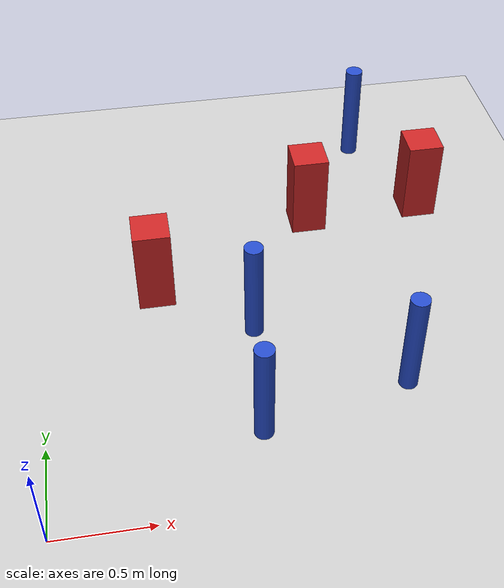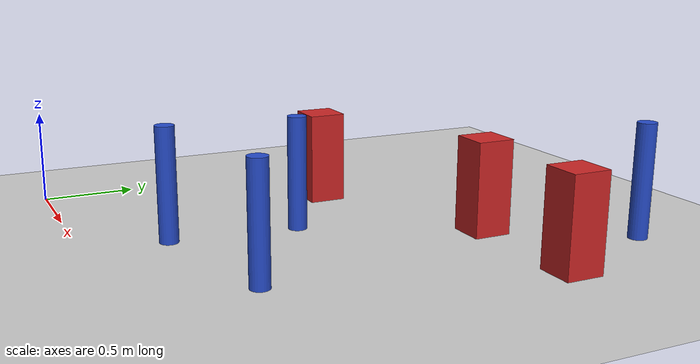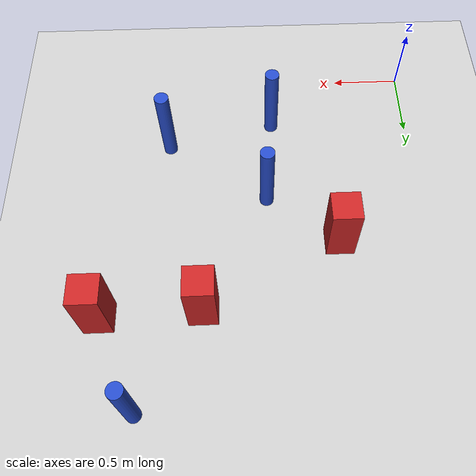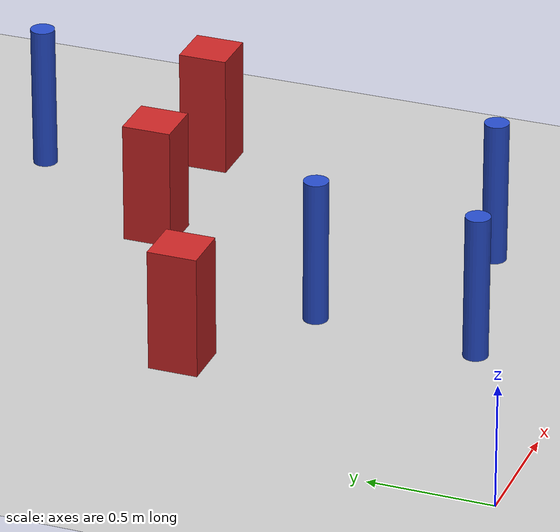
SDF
<sdf version="1.6">
 <world name="default">
  <model name="ground_plane">
   <static>1</static>
   <link name="link">
    <collision name="collision">
     <geometry><plane><normal>0 0 1</normal><size>100 100</size></plane></geometry>
     <surface><friction><ode><mu>100</mu><mu2>50</mu2></ode></friction></surface>
    </collision>
    <visual name="visual">
     <cast_shadows>0</cast_shadows>
     <geometry><plane><normal>0 0 1</normal><size>100 100</size></plane></geometry>
     <material>
      <ambient>1.0 1.0 1.0 1.0</ambient>
      <diffuse>0.8 0.8 0.8 1.0</diffuse>
      <specular>0.01 0.01 0.01 1.000000</specular>
     </material>
    </visual>
   </link>
  </model>
  <model name="pole_obstacle43">
   <static>true</static>
   <pose>1.11358468092 1.10883143147 7.38925637345e-09 -8.471706928e-08 1.24976765079e-08 -1.74513093017e-07</pose>
   <link name="link">
    <pose>0 0 0.3 0 -0 0</pose>
    <inertial>
     <mass>1</mass>
     <inertia><ixx>0.145833</ixx><ixy>0</ixy><ixz>0</ixz><iyy>0.145833</iyy><iyz>0</iyz><izz>0.125</izz></inertia>
    </inertial>
    <collision name="collision">
     <geometry><cylinder><radius>0.05</radius><length>.6</length></cylinder></geometry>
    </collision>
    <visual name="visual">
     <geometry><cylinder><radius>0.05</radius><length>.6</length></cylinder></geometry>
     <material>
      <script><name>Gazebo/Blue</name><uri>file://media/materials/scripts/gazebo.material</uri></script>
     </material>
    </visual>
   </link>
  </model>
  <model name="pole_obstacle60">
   <static>true</static>
   <pose>1.83155018089 0.620157821392 7.38925637345e-09 -8.47170692799e-08 1.24976765075e-08 -1.74513093017e-07</pose>
   <link name="link">
    <pose>0 0 0.3 0 -0 0</pose>
    <inertial>
     <mass>1</mass>
     <inertia><ixx>0.145833</ixx><ixy>0</ixy><ixz>0</ixz><iyy>0.145833</iyy><iyz>0</iyz><izz>0.125</izz></inertia>
    </inertial>
    <collision name="collision">
     <geometry><cylinder><radius>0.05</radius><length>.6</length></cylinder></geometry>
    </collision>
    <visual name="visual">
     <geometry><cylinder><radius>0.05</radius><length>.6</length></cylinder></geometry>
     <material>
      <script><name>Gazebo/Blue</name><uri>file://media/materials/scripts/gazebo.material</uri></script>
     </material>
    </visual>
   </link>
  </model>
  <model name="square_post_obstacle125">
   <static>true</static>
   <pose>0.617754110919 1.46948923768 1.91545236811e-07 -7.35059704564e-06 1.12565212e-07 2.39332434364e-05</pose>
   <link name="link">
    <pose>0 0 0.25 0 -0 0</pose>
    <inertial>
     <mass>100</mass>
     <inertia>
      <ixx>0.166667</ixx>
      <ixy>0</ixy>
      <ixz>0</ixz>
      <iyy>0.166667</iyy>
      <iyz>0</iyz>
      <izz>0.166667</izz>
     </inertia>
    </inertial>
    <collision name="collision"><geometry><box><size>.2 .2 .5</size></box></geometry></collision>
    <visual name="visual">
     <geometry><box><size>.2 .2 .5</size></box></geometry>
     <material>
      <script><name>Gazebo/Red</name><uri>file://media/materials/scripts/gazebo.material</uri></script>
     </material>
    </visual>
   </link>
  </model>
  <model name="square_post_obstacle126">
   <static>true</static>
   <pose>1.56883489974 1.95516472018 1.91545236811e-07 -7.35059704564e-06 1.12565212e-07 2.39332434364e-05</pose>
   <link name="link">
    <pose>0 0 0.25 0 -0 0</pose>
    <inertial>
     <mass>100</mass>
     <inertia>
      <ixx>0.166667</ixx>
      <ixy>0</ixy>
      <ixz>0</ixz>
      <iyy>0.166667</iyy>
      <iyz>0</iyz>
      <izz>0.166667</izz>
     </inertia>
    </inertial>
    <collision name="collision"><geometry><box><size>.2 .2 .5</size></box></geometry></collision>
    <visual name="visual">
     <geometry><box><size>.2 .2 .5</size></box></geometry>
     <material>
      <script><name>Gazebo/Red</name><uri>file://media/materials/scripts/gazebo.material</uri></script>
     </material>
    </visual>
   </link>
  </model>
  <model name="pole_obstacle158">
   <static>true</static>
   <pose>1.0522010473 0.433872720955 7.38925637345e-09 -8.47170692799e-08 1.24976765065e-08 -1.74513093017e-07</pose>
   <link name="link">
    <pose>0 0 0.3 0 -0 0</pose>
    <inertial>
     <mass>1</mass>
     <inertia><ixx>0.145833</ixx><ixy>0</ixy><ixz>0</ixz><iyy>0.145833</iyy><iyz>0</iyz><izz>0.125</izz></inertia>
    </inertial>
    <collision name="collision">
     <geometry><cylinder><radius>0.05</radius><length>.6</length></cylinder></geometry>
    </collision>
    <visual name="visual">
     <geometry><cylinder><radius>0.05</radius><length>.6</length></cylinder></geometry>
     <material>
      <script><name>Gazebo/Blue</name><uri>file://media/materials/scripts/gazebo.material</uri></script>
     </material>
    </visual>
   </link>
  </model>
  <model name="square_post_obstacle190">
   <static>true</static>
   <pose>2.25427345611 1.98426006907 1.91545236811e-07 -7.35059704564e-06 1.12565212e-07 2.39332434364e-05</pose>
   <link name="link">
    <pose>0 0 0.25 0 -0 0</pose>
    <inertial>
     <mass>100</mass>
     <inertia>
      <ixx>0.166667</ixx>
      <ixy>0</ixy>
      <ixz>0</ixz>
      <iyy>0.166667</iyy>
      <iyz>0</iyz>
      <izz>0.166667</izz>
     </inertia>
    </inertial>
    <collision name="collision"><geometry><box><size>.2 .2 .5</size></box></geometry></collision>
    <visual name="visual">
     <geometry><box><size>.2 .2 .5</size></box></geometry>
     <material>
      <script><name>Gazebo/Red</name><uri>file://media/materials/scripts/gazebo.material</uri></script>
     </material>
    </visual>
   </link>
  </model>
  <model name="pole_obstacle228">
   <static>true</static>
   <pose>1.99240000957 2.61421002078 7.38925637345e-09 -8.47170692799e-08 1.24976765015e-08 -1.74513093019e-07</pose>
   <link name="link">
    <pose>0 0 0.3 0 -0 0</pose>
    <inertial>
     <mass>1</mass>
     <inertia><ixx>0.145833</ixx><ixy>0</ixy><ixz>0</ixz><iyy>0.145833</iyy><iyz>0</iyz><izz>0.125</izz></inertia>
    </inertial>
    <collision name="collision">
     <geometry><cylinder><radius>0.05</radius><length>.6</length></cylinder></geometry>
    </collision>
    <visual name="visual">
     <geometry><cylinder><radius>0.05</radius><length>.6</length></cylinder></geometry>
     <material>
      <script><name>Gazebo/Blue</name><uri>file://media/materials/scripts/gazebo.material</uri></script>
     </material>
    </visual>
   </link>
  </model>
 </world>
</sdf>
